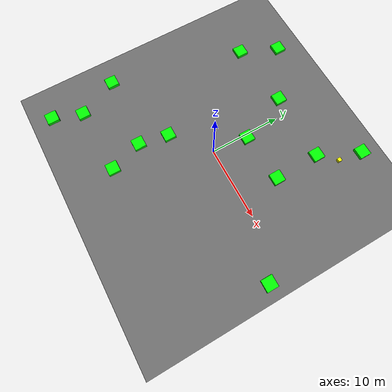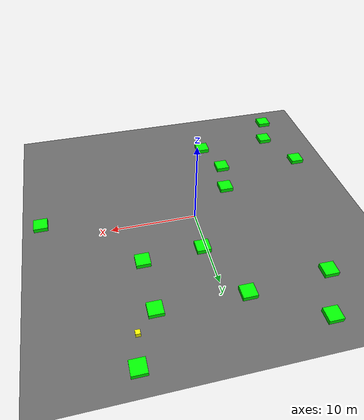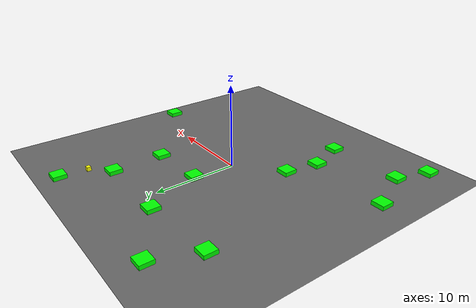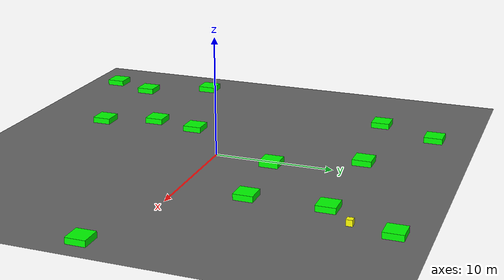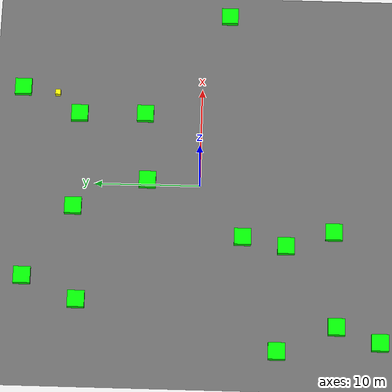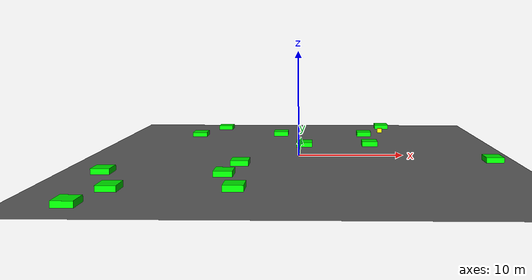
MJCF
<mujoco model="baseline_lvl5_obs14_seed4010">
    <compiler angle="degree" coordinate="local" inertiafromgeom="true"/>
    <option integrator="RK4" timestep="0.01"/>

    <asset>
        <texture builtin="gradient" height="100" rgb1="0.6 0.8 1" rgb2="0 0 0" type="skybox" width="100"/>
        <texture name="floor_texture" type="2d" builtin="checker" width="100" height="100" rgb1="0 0 0" rgb2="0.8 0.8 0.8"/>
        <material name="MatPlane" reflectance="0.5" shininess="1" specular="1" texrepeat="10 10" texture="floor_texture"/>
    </asset>

    <!-- Excluding the contact between the agent and the goal, and the agent and the floor -->
    <contact>
        <exclude body1="agent" body2="goal"/>
        <exclude body1 = "agent" body2 = "floor"/>
    </contact>

    <extension>
        <plugin plugin = "mujoco.pid">
            <instance name = "pid1">
                <config key="kp" value="2"/>
                <config key="ki" value="0"/>
                <config key="kd" value="55"/>
            </instance>
        </plugin>
    </extension>

    <worldbody>
        <light cutoff="100" diffuse="1 1 1" dir="-0 0 -1.3" directional="true" exponent="1" pos="0 0 1.3" specular=".1 .1 .1"/>
        <body name="floor" pos="0 0 0">
            <geom name="floor_geom" type="plane" size="20 20 0.1" material="MatPlane"/>
        </body>

        <!-- Goal -->
        <body name="goal" pos="12.000 -12.000 0">
            <geom name="goal_geom" type="plane" size="0.5 0.5 1" pos="0 0 0" rgba="1 0 0 1"/>
        </body>

        <!-- Agent -->
        <body name="agent" pos="9.268 13.975 0.25">
            <joint name="j1" type="slide" axis ="1 0 0 "/>
            <joint name="j2" type="slide" axis ="0 1 0 "/>
            <geom name="agent_geom" type="box" size="0.25 0.25 0.250" rgba="1 1 0 1"/>
        </body>

    <body name="obstacle1" pos="0.456 5.002 0.250">
      <geom name="obstacle1_geom" type="box"
            size="0.800 0.800 0.250"
            rgba="0 1 0 1"/>
    </body>
    <body name="obstacle2" pos="7.176 11.771 0.250">
      <geom name="obstacle2_geom" type="box"
            size="0.800 0.800 0.250"
            rgba="0 1 0 1"/>
    </body>
    <body name="obstacle3" pos="17.877 -2.490 0.250">
      <geom name="obstacle3_geom" type="box"
            size="0.800 0.800 0.250"
            rgba="0 1 0 1"/>
    </body>
    <body name="obstacle4" pos="-4.415 -12.753 0.250">
      <geom name="obstacle4_geom" type="box"
            size="0.800 0.800 0.250"
            rgba="0 1 0 1"/>
    </body>
    <body name="obstacle5" pos="-2.378 11.951 0.250">
      <geom name="obstacle5_geom" type="box"
            size="0.800 0.800 0.250"
            rgba="0 1 0 1"/>
    </body>
    <body name="obstacle6" pos="-9.449 16.375 0.250">
      <geom name="obstacle6_geom" type="box"
            size="0.800 0.800 0.250"
            rgba="0 1 0 1"/>
    </body>
    <body name="obstacle7" pos="-5.088 -4.153 0.250">
      <geom name="obstacle7_geom" type="box"
            size="0.800 0.800 0.250"
            rgba="0 1 0 1"/>
    </body>
    <body name="obstacle8" pos="7.286 5.443 0.250">
      <geom name="obstacle8_geom" type="box"
            size="0.800 0.800 0.250"
            rgba="0 1 0 1"/>
    </body>
    <body name="obstacle9" pos="9.805 17.346 0.250">
      <geom name="obstacle9_geom" type="box"
            size="0.800 0.800 0.250"
            rgba="0 1 0 1"/>
    </body>
    <body name="obstacle10" pos="-11.656 11.221 0.250">
      <geom name="obstacle10_geom" type="box"
            size="0.800 0.800 0.250"
            rgba="0 1 0 1"/>
    </body>
    <body name="obstacle11" pos="-13.726 -12.996 0.250">
      <geom name="obstacle11_geom" type="box"
            size="0.800 0.800 0.250"
            rgba="0 1 0 1"/>
    </body>
    <body name="obstacle12" pos="-15.153 -17.014 0.250">
      <geom name="obstacle12_geom" type="box"
            size="0.800 0.800 0.250"
            rgba="0 1 0 1"/>
    </body>
    <body name="obstacle13" pos="-5.898 -8.251 0.250">
      <geom name="obstacle13_geom" type="box"
            size="0.800 0.800 0.250"
            rgba="0 1 0 1"/>
    </body>
    <body name="obstacle14" pos="-16.197 -7.489 0.250">
      <geom name="obstacle14_geom" type="box"
            size="0.800 0.800 0.250"
            rgba="0 1 0 1"/>
    </body>
    </worldbody>

    <actuator>
        <plugin joint="j1" plugin="mujoco.pid" instance="pid1" />
        <plugin joint="j2" plugin="mujoco.pid" instance="pid1"/>
    </actuator>

  <sensor>
    <distance name="dist1" geom1="agent_geom" geom2="obstacle1_geom" cutoff="1.5"/>
    <distance name="dist2" geom1="agent_geom" geom2="obstacle2_geom" cutoff="1.5"/>
    <distance name="dist3" geom1="agent_geom" geom2="obstacle3_geom" cutoff="1.5"/>
    <distance name="dist4" geom1="agent_geom" geom2="obstacle4_geom" cutoff="1.5"/>
    <distance name="dist5" geom1="agent_geom" geom2="obstacle5_geom" cutoff="1.5"/>
    <distance name="dist6" geom1="agent_geom" geom2="obstacle6_geom" cutoff="1.5"/>
    <distance name="dist7" geom1="agent_geom" geom2="obstacle7_geom" cutoff="1.5"/>
    <distance name="dist8" geom1="agent_geom" geom2="obstacle8_geom" cutoff="1.5"/>
    <distance name="dist9" geom1="agent_geom" geom2="obstacle9_geom" cutoff="1.5"/>
    <distance name="dist10" geom1="agent_geom" geom2="obstacle10_geom" cutoff="1.5"/>
    <distance name="dist11" geom1="agent_geom" geom2="obstacle11_geom" cutoff="1.5"/>
    <distance name="dist12" geom1="agent_geom" geom2="obstacle12_geom" cutoff="1.5"/>
    <distance name="dist13" geom1="agent_geom" geom2="obstacle13_geom" cutoff="1.5"/>
    <distance name="dist14" geom1="agent_geom" geom2="obstacle14_geom" cutoff="1.5"/>
  </sensor>
</mujoco>
